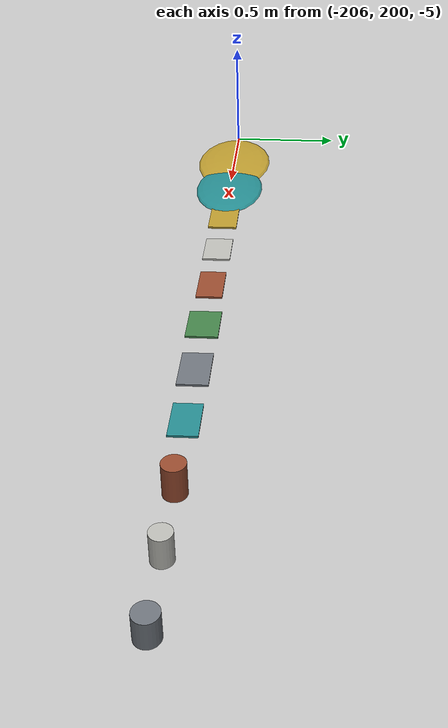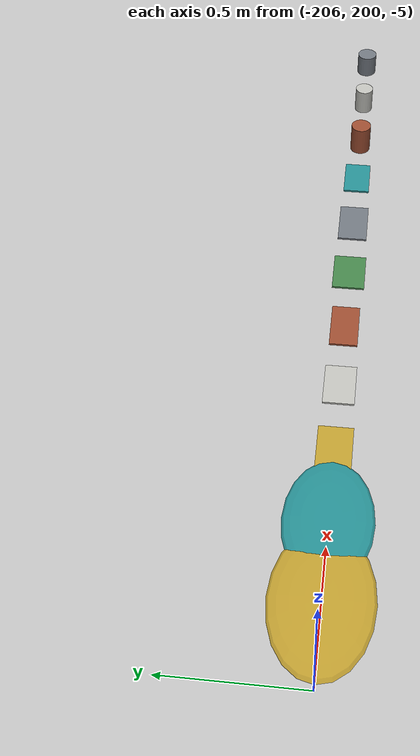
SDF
<sdf version="1.9">
 <world name="world_d_mixed_curb_vegetation">
  <model name="ground">
   <static>true</static>
   <link name="ground">
    <collision name="collision">
     <geometry><plane><normal>0 0 1</normal><size>80 80</size></plane></geometry>
    </collision>
    <visual name="visual">
     <geometry><plane><normal>0 0 1</normal><size>80 80</size></plane></geometry>
     <material>
      <ambient>0.31 0.35 0.27 1</ambient>
      <diffuse>0.31 0.35 0.27 1</diffuse>
      <specular>0.10 0.10 0.10 1</specular>
      <pbr><metal><roughness>0.76</roughness><metalness>0</metalness></metal></pbr>
     </material>
    </visual>
   </link>
  </model>
  <model name="can_flat_side">
   <static>true</static>
   <pose>-202.700 200 -5 0 0 0</pose>
   <link name="body">
    <visual name="visual">
     <geometry><cylinder><radius>0.0440</radius><length>0.1000</length></cylinder></geometry>
     <material>
      <ambient>0.43922 0.46275 0.49412 1</ambient>
      <diffuse>0.43922 0.46275 0.49412 1</diffuse>
      <specular>0.10 0.10 0.10 1</specular>
      <pbr><metal><roughness>0.68</roughness><metalness>0</metalness></metal></pbr>
     </material>
    </visual>
    <collision name="collision">
     <geometry><cylinder><radius>0.0440</radius><length>0.1000</length></cylinder></geometry>
    </collision>
   </link>
   <plugin filename="gz-sim-label-system" name="gz::sim::systems::Label"><label>2</label></plugin>
  </model>
  <model name="can_matte_rings">
   <static>true</static>
   <pose>-203.000 200 -5 0 0 0</pose>
   <link name="body">
    <visual name="visual">
     <geometry><cylinder><radius>0.0400</radius><length>0.1150</length></cylinder></geometry>
     <material>
      <ambient>0.74510 0.74510 0.72157 1</ambient>
      <diffuse>0.74510 0.74510 0.72157 1</diffuse>
      <specular>0.10 0.10 0.10 1</specular>
      <pbr><metal><roughness>0.68</roughness><metalness>0</metalness></metal></pbr>
     </material>
    </visual>
    <collision name="collision">
     <geometry><cylinder><radius>0.0400</radius><length>0.1150</length></cylinder></geometry>
    </collision>
   </link>
   <plugin filename="gz-sim-label-system" name="gz::sim::systems::Label"><label>2</label></plugin>
  </model>
  <model name="can_unseen_crushed">
   <static>true</static>
   <pose>-203.300 200 -5 0 0 0</pose>
   <link name="body">
    <visual name="visual">
     <geometry><cylinder><radius>0.0440</radius><length>0.1300</length></cylinder></geometry>
     <material>
      <ambient>0.60392 0.29804 0.18824 1</ambient>
      <diffuse>0.60392 0.29804 0.18824 1</diffuse>
      <specular>0.10 0.10 0.10 1</specular>
      <pbr><metal><roughness>0.68</roughness><metalness>0</metalness></metal></pbr>
     </material>
    </visual>
    <collision name="collision">
     <geometry><cylinder><radius>0.0440</radius><length>0.1300</length></cylinder></geometry>
    </collision>
   </link>
   <plugin filename="gz-sim-label-system" name="gz::sim::systems::Label"><label>2</label></plugin>
  </model>
  <model name="paper_folded_grid">
   <static>true</static>
   <pose>-203.600 200 -5 0 0 0</pose>
   <link name="body">
    <visual name="visual">
     <geometry><box><size>0.1800 0.1100 0.0080</size></box></geometry>
     <material>
      <ambient>0.14902 0.55686 0.57255 1</ambient>
      <diffuse>0.14902 0.55686 0.57255 1</diffuse>
      <specular>0.10 0.10 0.10 1</specular>
      <pbr><metal><roughness>0.68</roughness><metalness>0</metalness></metal></pbr>
     </material>
    </visual>
    <collision name="collision"><geometry><box><size>0.1800 0.1100 0.0080</size></box></geometry></collision>
   </link>
   <plugin filename="gz-sim-label-system" name="gz::sim::systems::Label"><label>3</label></plugin>
  </model>
  <model name="paper_torn_text">
   <static>true</static>
   <pose>-203.900 200 -5 0 0 0</pose>
   <link name="body">
    <visual name="visual">
     <geometry><box><size>0.2000 0.1200 0.0080</size></box></geometry>
     <material>
      <ambient>0.43922 0.46275 0.49412 1</ambient>
      <diffuse>0.43922 0.46275 0.49412 1</diffuse>
      <specular>0.10 0.10 0.10 1</specular>
      <pbr><metal><roughness>0.68</roughness><metalness>0</metalness></metal></pbr>
     </material>
    </visual>
    <collision name="collision"><geometry><box><size>0.2000 0.1200 0.0080</size></box></geometry></collision>
   </link>
   <plugin filename="gz-sim-label-system" name="gz::sim::systems::Label"><label>3</label></plugin>
  </model>
  <model name="paper_long_bands">
   <static>true</static>
   <pose>-204.200 200 -5 0 0 0</pose>
   <link name="body">
    <visual name="visual">
     <geometry><box><size>0.1800 0.1300 0.0080</size></box></geometry>
     <material>
      <ambient>0.26667 0.51765 0.29020 1</ambient>
      <diffuse>0.26667 0.51765 0.29020 1</diffuse>
      <specular>0.10 0.10 0.10 1</specular>
      <pbr><metal><roughness>0.68</roughness><metalness>0</metalness></metal></pbr>
     </material>
    </visual>
    <collision name="collision"><geometry><box><size>0.1800 0.1300 0.0080</size></box></geometry></collision>
   </link>
   <plugin filename="gz-sim-label-system" name="gz::sim::systems::Label"><label>3</label></plugin>
  </model>
  <model name="paper_crumpled">
   <static>true</static>
   <pose>-204.500 200 -5 0 0 0</pose>
   <link name="body">
    <visual name="visual">
     <geometry><box><size>0.2000 0.1100 0.0080</size></box></geometry>
     <material>
      <ambient>0.60392 0.29804 0.18824 1</ambient>
      <diffuse>0.60392 0.29804 0.18824 1</diffuse>
      <specular>0.10 0.10 0.10 1</specular>
      <pbr><metal><roughness>0.68</roughness><metalness>0</metalness></metal></pbr>
     </material>
    </visual>
    <collision name="collision"><geometry><box><size>0.2000 0.1100 0.0080</size></box></geometry></collision>
   </link>
   <plugin filename="gz-sim-label-system" name="gz::sim::systems::Label"><label>3</label></plugin>
  </model>
  <model name="paper_matte_grid">
   <static>true</static>
   <pose>-204.800 200 -5 0 0 0</pose>
   <link name="body">
    <visual name="visual">
     <geometry><box><size>0.1800 0.1200 0.0080</size></box></geometry>
     <material>
      <ambient>0.74510 0.74510 0.72157 1</ambient>
      <diffuse>0.74510 0.74510 0.72157 1</diffuse>
      <specular>0.10 0.10 0.10 1</specular>
      <pbr><metal><roughness>0.68</roughness><metalness>0</metalness></metal></pbr>
     </material>
    </visual>
    <collision name="collision"><geometry><box><size>0.1800 0.1200 0.0080</size></box></geometry></collision>
   </link>
   <plugin filename="gz-sim-label-system" name="gz::sim::systems::Label"><label>3</label></plugin>
  </model>
  <model name="paper_unseen_torn">
   <static>true</static>
   <pose>-205.100 200 -5 0 0 0</pose>
   <link name="body">
    <visual name="visual">
     <geometry><box><size>0.2000 0.1300 0.0080</size></box></geometry>
     <material>
      <ambient>0.74510 0.61569 0.18824 1</ambient>
      <diffuse>0.74510 0.61569 0.18824 1</diffuse>
      <specular>0.10 0.10 0.10 1</specular>
      <pbr><metal><roughness>0.68</roughness><metalness>0</metalness></metal></pbr>
     </material>
    </visual>
    <collision name="collision"><geometry><box><size>0.2000 0.1300 0.0080</size></box></geometry></collision>
   </link>
   <plugin filename="gz-sim-label-system" name="gz::sim::systems::Label"><label>3</label></plugin>
  </model>
  <model name="leaves_sparse">
   <static>true</static>
   <pose>-205.400 200 -5 0 0 0</pose>
   <link name="body">
    <visual name="visual">
     <geometry><ellipsoid><radii>0.2500 0.1600 0.0250</radii></ellipsoid></geometry>
     <material>
      <ambient>0.14902 0.55686 0.57255 1</ambient>
      <diffuse>0.14902 0.55686 0.57255 1</diffuse>
      <specular>0.10 0.10 0.10 1</specular>
      <pbr><metal><roughness>0.68</roughness><metalness>0</metalness></metal></pbr>
     </material>
    </visual>
    <collision name="collision">
     <geometry><ellipsoid><radii>0.2500 0.1600 0.0250</radii></ellipsoid></geometry>
    </collision>
   </link>
   <plugin filename="gz-sim-label-system" name="gz::sim::systems::Label"><label>4</label></plugin>
  </model>
  <model name="leaves_dense">
   <static>true</static>
   <pose>-205.700 200 -5 0 0 0</pose>
   <link name="body">
    <visual name="visual">
     <geometry><ellipsoid><radii>0.2800 0.1800 0.0250</radii></ellipsoid></geometry>
     <material>
      <ambient>0.74510 0.61569 0.18824 1</ambient>
      <diffuse>0.74510 0.61569 0.18824 1</diffuse>
      <specular>0.10 0.10 0.10 1</specular>
      <pbr><metal><roughness>0.68</roughness><metalness>0</metalness></metal></pbr>
     </material>
    </visual>
    <collision name="collision">
     <geometry><ellipsoid><radii>0.2800 0.1800 0.0250</radii></ellipsoid></geometry>
    </collision>
   </link>
   <plugin filename="gz-sim-label-system" name="gz::sim::systems::Label"><label>4</label></plugin>
  </model>
 </world>
</sdf>
